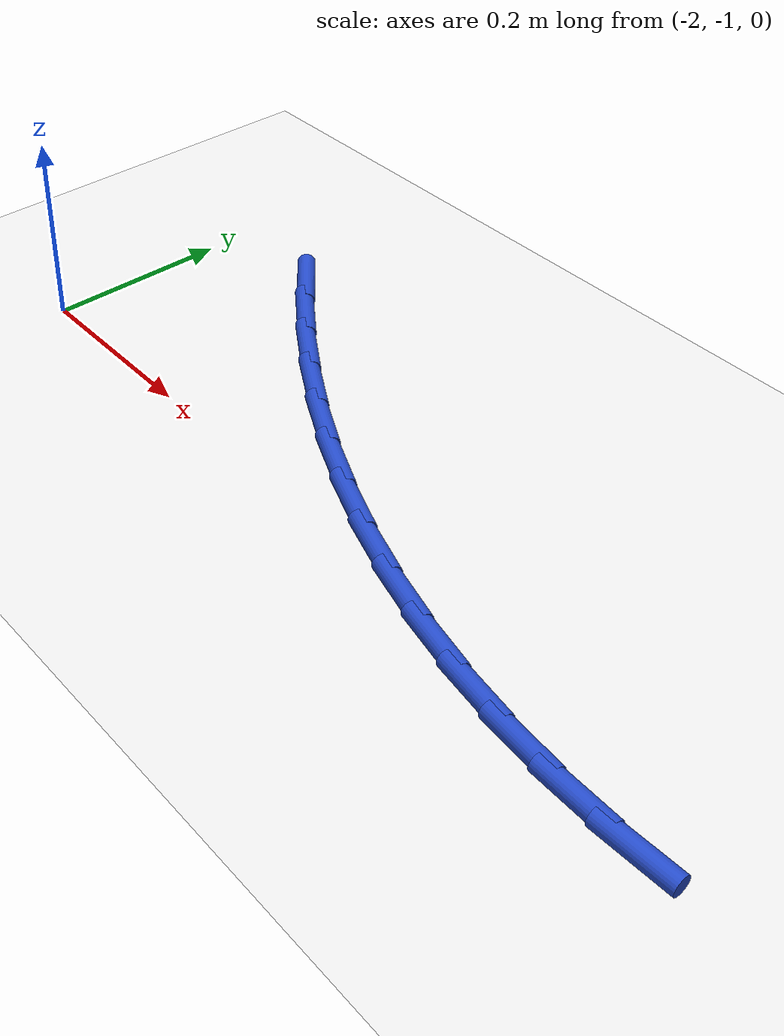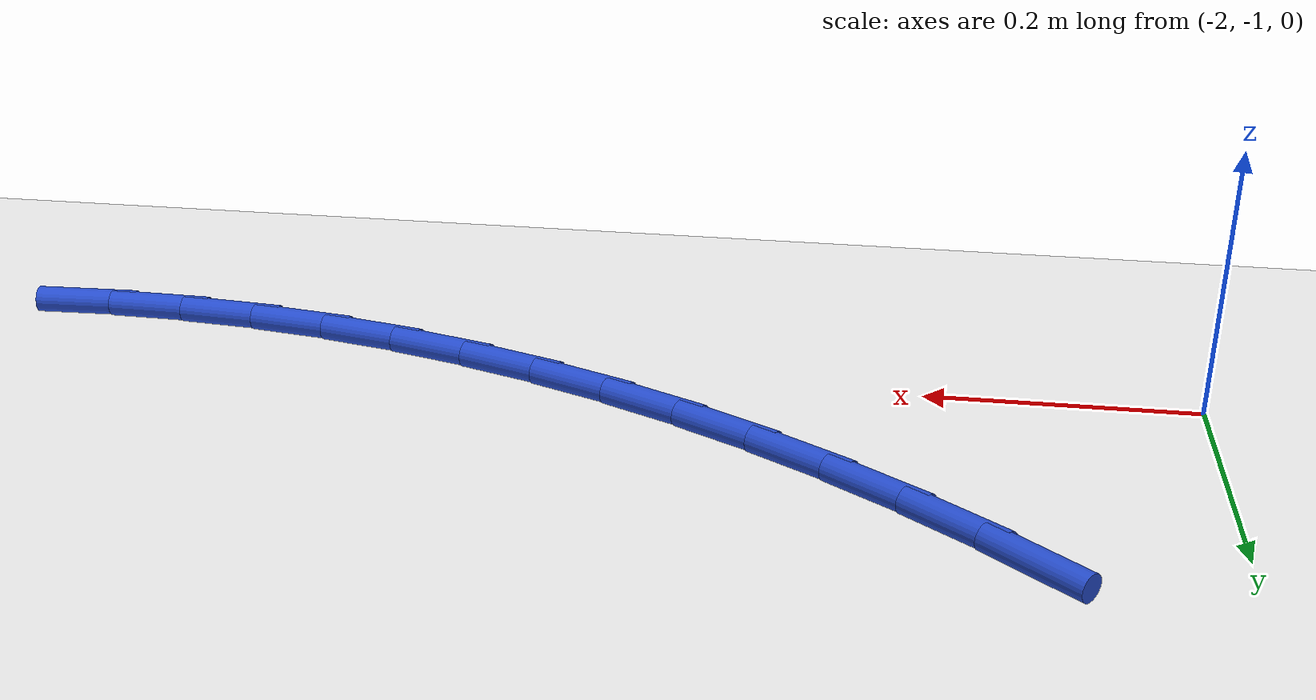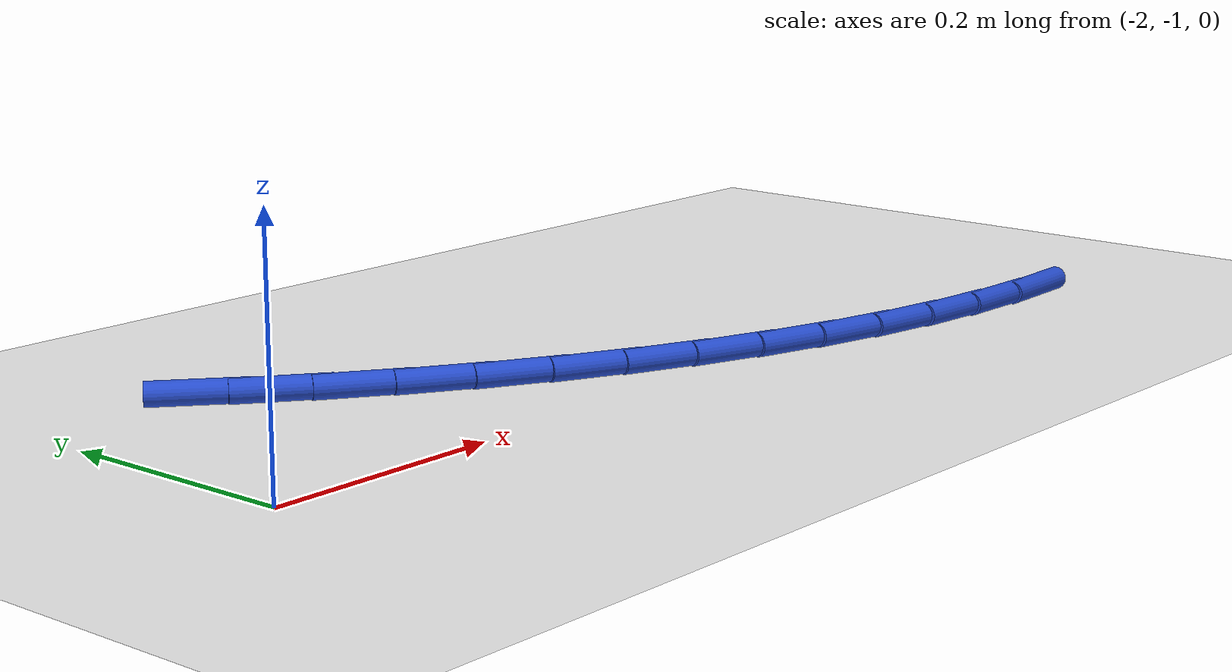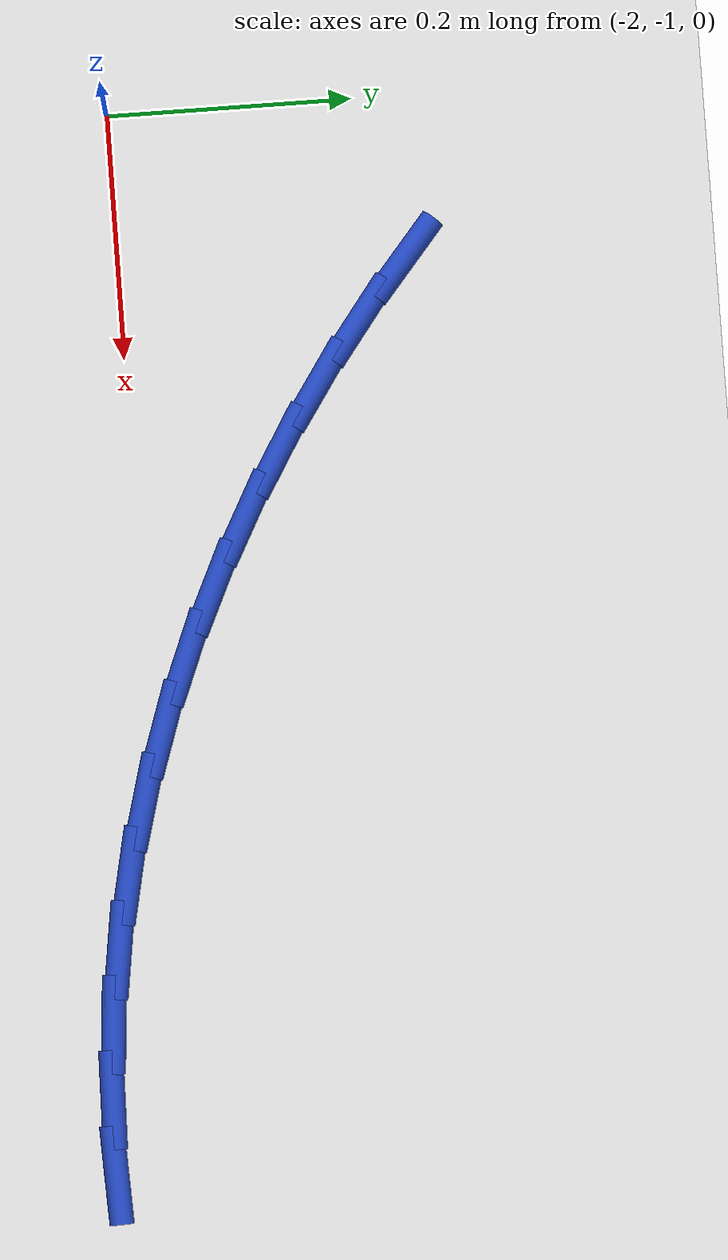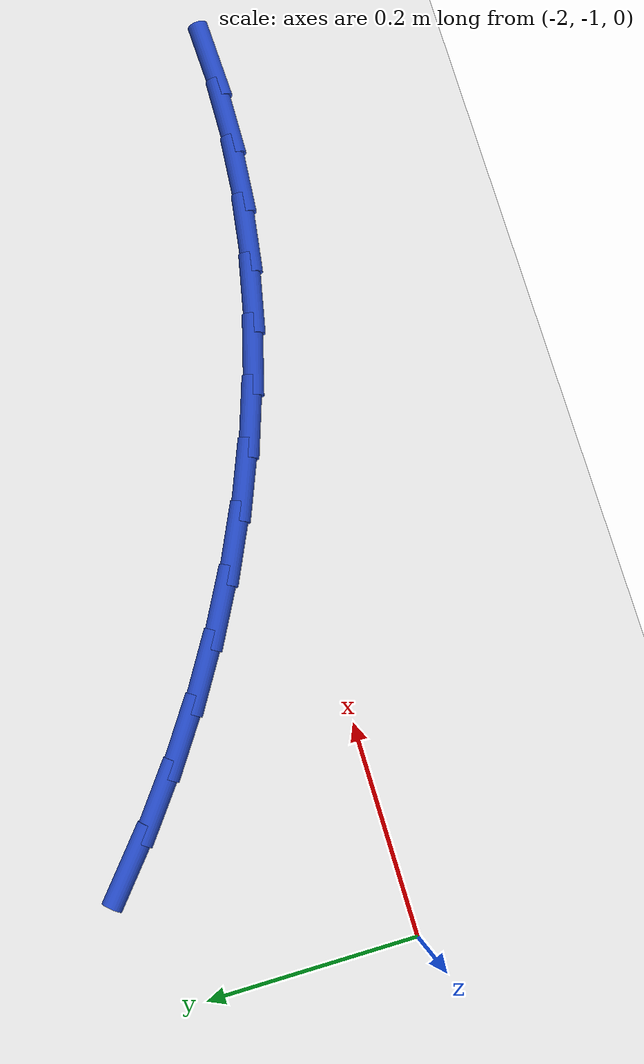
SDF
<sdf version="1.6">
 <world name="default">
  <model name="ground_plane">
   <static>1</static>
   <link name="link">
    <collision name="collision">
     <geometry><plane><normal>0 0 1</normal><size>100 100</size></plane></geometry>
     <surface><friction><ode><mu>100</mu><mu2>50</mu2></ode></friction></surface>
    </collision>
    <visual name="visual">
     <cast_shadows>0</cast_shadows>
     <geometry><plane><normal>0 0 1</normal><size>100 100</size></plane></geometry>
     <material>
      <script><uri>file://media/materials/scripts/gazebo.material</uri><name>Gazebo/WhiteGlow</name></script>
     </material>
    </visual>
   </link>
  </model>
  <model name="line">
   <link name="link_69">
    <pose>-1.8652805599987872 -0.7667932011296249 0.01 0 1.57 -0.697811110659236</pose>
    <collision name="collision">
     <geometry><cylinder><radius>0.01</radius><length>0.08</length></cylinder></geometry>
    </collision>
    <visual name="visual">
     <material>
      <script><name>Gazebo/Blue</name><uri>file://media/materials/scripts/gazebo.material</uri></script>
     </material>
     <geometry><cylinder><radius>0.01</radius><length>0.08</length></cylinder></geometry>
    </visual>
   </link>
   <link name="link_70">
    <pose>-1.8174142268683473 -0.8069316805952889 0.01 0 1.57 -0.6464576038328189</pose>
    <collision name="collision">
     <geometry><cylinder><radius>0.01</radius><length>0.08</length></cylinder></geometry>
    </collision>
    <visual name="visual">
     <material>
      <script><name>Gazebo/Blue</name><uri>file://media/materials/scripts/gazebo.material</uri></script>
     </material>
     <geometry><cylinder><radius>0.01</radius><length>0.08</length></cylinder></geometry>
    </visual>
   </link>
   <link name="link_71">
    <pose>-1.76759861480668 -0.8445240261107594 0.01 0 1.57 -0.5967307222983811</pose>
    <collision name="collision">
     <geometry><cylinder><radius>0.01</radius><length>0.08</length></cylinder></geometry>
    </collision>
    <visual name="visual">
     <material>
      <script><name>Gazebo/Blue</name><uri>file://media/materials/scripts/gazebo.material</uri></script>
     </material>
     <geometry><cylinder><radius>0.01</radius><length>0.08</length></cylinder></geometry>
    </visual>
   </link>
   <link name="link_72">
    <pose>-1.7161828190551798 -0.8794532472666532 0.01 0 1.57 -0.5460311994278549</pose>
    <collision name="collision">
     <geometry><cylinder><radius>0.01</radius><length>0.08</length></cylinder></geometry>
    </collision>
    <visual name="visual">
     <material>
      <script><name>Gazebo/Blue</name><uri>file://media/materials/scripts/gazebo.material</uri></script>
     </material>
     <geometry><cylinder><radius>0.01</radius><length>0.08</length></cylinder></geometry>
    </visual>
   </link>
   <link name="link_73">
    <pose>-1.6633006497985259 -0.9115875085804724 0.01 0 1.57 -0.4940192339350842</pose>
    <collision name="collision">
     <geometry><cylinder><radius>0.01</radius><length>0.08</length></cylinder></geometry>
    </collision>
    <visual name="visual">
     <material>
      <script><name>Gazebo/Blue</name><uri>file://media/materials/scripts/gazebo.material</uri></script>
     </material>
     <geometry><cylinder><radius>0.01</radius><length>0.08</length></cylinder></geometry>
    </visual>
   </link>
   <link name="link_74">
    <pose>-1.6090703258098824 -0.9407938994572749 0.01 0 1.57 -0.4405312069710574</pose>
    <collision name="collision">
     <geometry><cylinder><radius>0.01</radius><length>0.08</length></cylinder></geometry>
    </collision>
    <visual name="visual">
     <material>
      <script><name>Gazebo/Blue</name><uri>file://media/materials/scripts/gazebo.material</uri></script>
     </material>
     <geometry><cylinder><radius>0.01</radius><length>0.08</length></cylinder></geometry>
    </visual>
   </link>
   <link name="link_75">
    <pose>-1.5536100658624161 -0.9669395093021164 0.01 0 1.57 -0.38542061706363073</pose>
    <collision name="collision">
     <geometry><cylinder><radius>0.01</radius><length>0.08</length></cylinder></geometry>
    </collision>
    <visual name="visual">
     <material>
      <script><name>Gazebo/Blue</name><uri>file://media/materials/scripts/gazebo.material</uri></script>
     </material>
     <geometry><cylinder><radius>0.01</radius><length>0.08</length></cylinder></geometry>
    </visual>
   </link>
   <link name="link_76">
    <pose>-1.4970380887292911 -0.989891427520055 0.01 0 1.57 -0.32856440780458085</pose>
    <collision name="collision">
     <geometry><cylinder><radius>0.01</radius><length>0.08</length></cylinder></geometry>
    </collision>
    <visual name="visual">
     <material>
      <script><name>Gazebo/Blue</name><uri>file://media/materials/scripts/gazebo.material</uri></script>
     </material>
     <geometry><cylinder><radius>0.01</radius><length>0.08</length></cylinder></geometry>
    </visual>
   </link>
   <link name="link_77">
    <pose>-1.4394726131836737 -1.009516743516146 0.01 0 1.57 -0.26987043925595927</pose>
    <collision name="collision">
     <geometry><cylinder><radius>0.01</radius><length>0.08</length></cylinder></geometry>
    </collision>
    <visual name="visual">
     <material>
      <script><name>Gazebo/Blue</name><uri>file://media/materials/scripts/gazebo.material</uri></script>
     </material>
     <geometry><cylinder><radius>0.01</radius><length>0.08</length></cylinder></geometry>
    </visual>
   </link>
   <link name="link_78">
    <pose>-1.381031857998728 -1.025682546695448 0.01 0 1.57 -0.20928589114040372</pose>
    <collision name="collision">
     <geometry><cylinder><radius>0.01</radius><length>0.08</length></cylinder></geometry>
    </collision>
    <visual name="visual">
     <material>
      <script><name>Gazebo/Blue</name><uri>file://media/materials/scripts/gazebo.material</uri></script>
     </material>
     <geometry><cylinder><radius>0.01</radius><length>0.08</length></cylinder></geometry>
    </visual>
   </link>
   <link name="link_79">
    <pose>-1.3218340419476204 -1.0382559264630171 0.01 0 1.57 -0.14681703372666935</pose>
    <collision name="collision">
     <geometry><cylinder><radius>0.01</radius><length>0.08</length></cylinder></geometry>
    </collision>
    <visual name="visual">
     <material>
      <script><name>Gazebo/Blue</name><uri>file://media/materials/scripts/gazebo.material</uri></script>
     </material>
     <geometry><cylinder><radius>0.01</radius><length>0.08</length></cylinder></geometry>
    </visual>
   </link>
   <link name="link_80">
    <pose>-1.2619975039896867 -1.0471046195980462 0.01 0 1.57 -0.08384752889509543</pose>
    <collision name="collision">
     <geometry><cylinder><radius>0.01</radius><length>0.08</length></cylinder></geometry>
    </collision>
    <visual name="visual">
     <material>
      <script><name>Gazebo/Blue</name><uri>file://media/materials/scripts/gazebo.material</uri></script>
     </material>
     <geometry><cylinder><radius>0.01</radius><length>0.08</length></cylinder></geometry>
    </visual>
   </link>
   <link name="link_81">
    <pose>-1.2016553768001246 -1.05217604816269 0.01 0 1.57 -0.02301749399321621</pose>
    <collision name="collision">
     <geometry><cylinder><radius>0.01</radius><length>0.08</length></cylinder></geometry>
    </collision>
    <visual name="visual">
     <material>
      <script><name>Gazebo/Blue</name><uri>file://media/materials/scripts/gazebo.material</uri></script>
     </material>
     <geometry><cylinder><radius>0.01</radius><length>0.08</length></cylinder></geometry>
    </visual>
   </link>
   <link name="link_82">
    <pose>-1.140969660754236 -1.0535731280026073 0.01 0 1.57 0.03541477012767108</pose>
    <collision name="collision">
     <geometry><cylinder><radius>0.01</radius><length>0.08</length></cylinder></geometry>
    </collision>
    <visual name="visual">
     <material>
      <script><name>Gazebo/Blue</name><uri>file://media/materials/scripts/gazebo.material</uri></script>
     </material>
     <geometry><cylinder><radius>0.01</radius><length>0.08</length></cylinder></geometry>
    </visual>
   </link>
  </model>
 </world>
</sdf>
